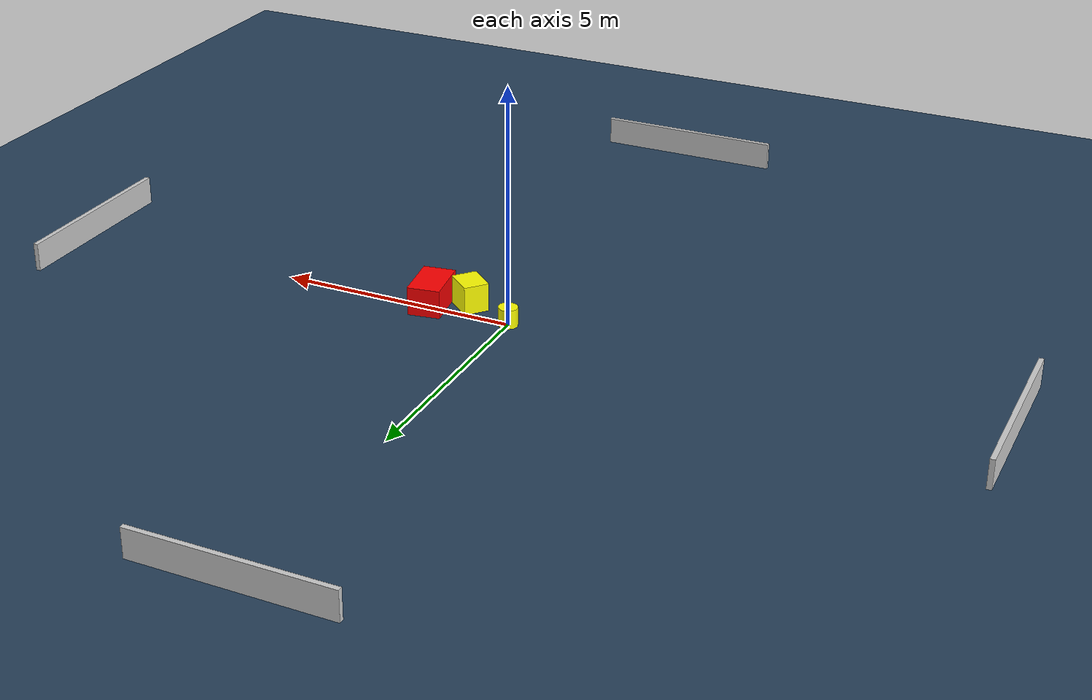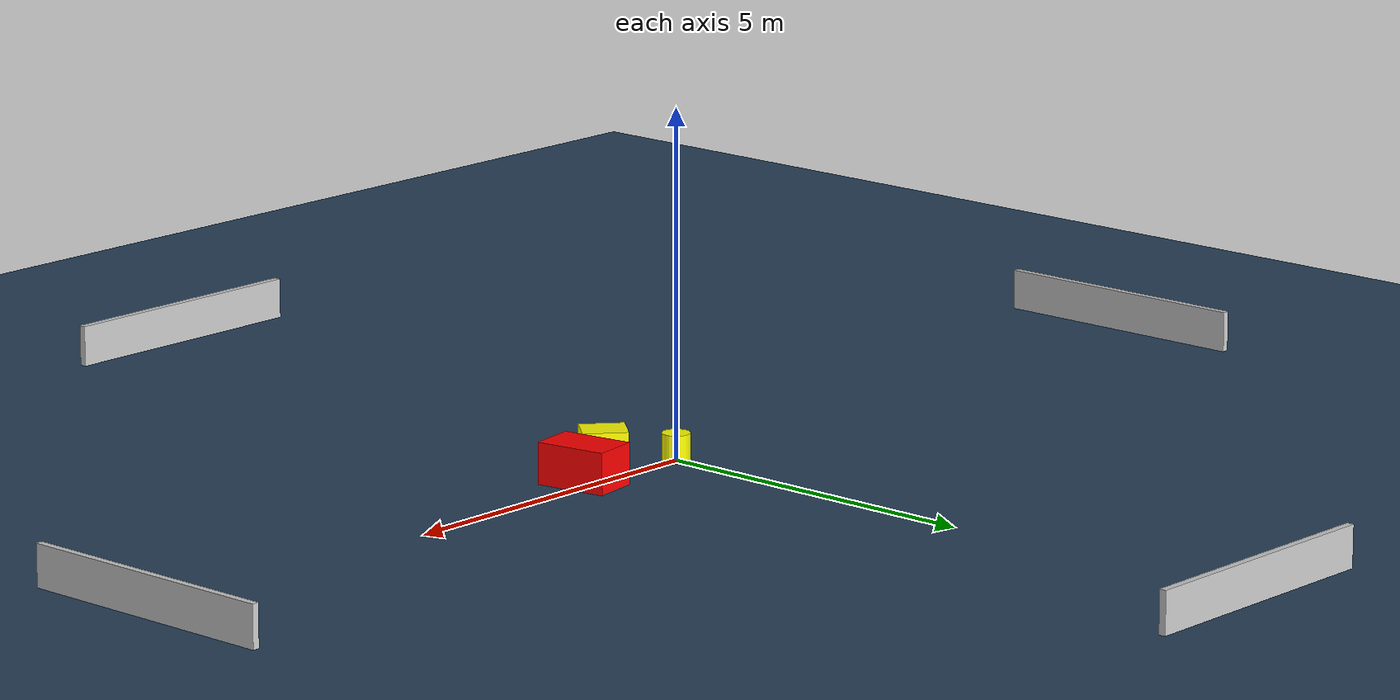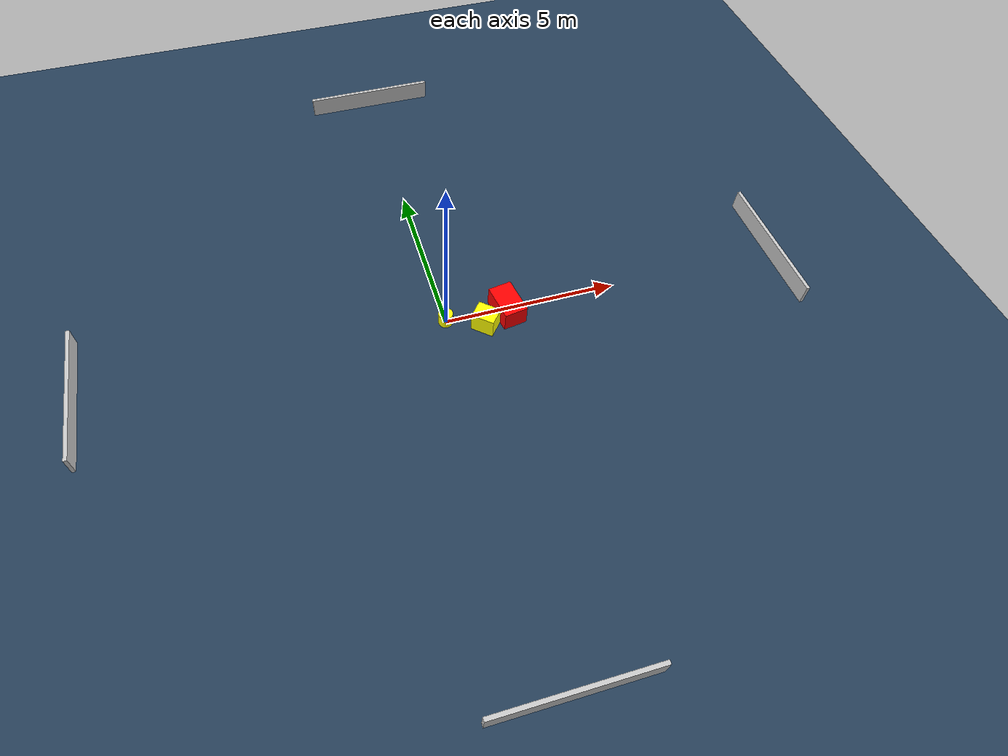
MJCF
<?xml version="1.0" ?>
<mujoco model="generated_environment">
  <option timestep="0.01" integrator="RK4" cone="elliptic"/>
  <default>
    <geom density="1"/>
  </default>
  <asset>
    <texture builtin="gradient" height="3072" name="skybox" rgb1="0.3 0.5 0.7" rgb2="0 0 0" type="skybox" width="512"/>
    <texture builtin="checker" height="300" name="groundplane" rgb1="0.2 0.3 0.4" rgb2="0.1 0.2 0.3" type="2d" width="300"/>
    <material name="groundplane" reflectance="0.2" texrepeat="5 5" texture="groundplane"/>
  </asset>
  <worldbody>
    <light dir="0 0 -1" directional="true" pos="0 0 1.5"/>
    <geom condim="3" friction="0.5 0.005 0.001" material="groundplane" name="floor" pos="0 0 0" size="0 0 0.05" type="plane"/>
    <body name="walls">
      <geom name="wall_1" condim="4" pos="-10.0 0.0 0.3" rgba="0.800000011920929 0.800000011920929 0.800000011920929 1.0" size="0.05 2.0 0.3" type="box"/>
      <geom name="wall_2" condim="4" pos="10.0 0.0 0.3" rgba="0.800000011920929 0.800000011920929 0.800000011920929 1.0" size="0.05 2.0 0.3" type="box"/>
      <geom name="wall_3" condim="4" pos="0.0 -10.0 0.3" rgba="0.800000011920929 0.800000011920929 0.800000011920929 1.0" size="2.0 0.05 0.3" type="box"/>
      <geom name="wall_4" condim="4" pos="0.0 10.0 0.3" rgba="0.800000011920929 0.800000011920929 0.800000011920929 1.0" size="2.0 0.05 0.3" type="box"/>
    </body>
    <body name="robot">
      <joint name="joint_x" type="slide" pos="0 0 0" axis="1 0 0"/>
      <joint name="joint_y" type="slide" pos="0 0 0" axis="0 1 0"/>
      <geom name="robot" type="cylinder" pos="0.0 0.0 0.2" size="0.2 0.2 0.0" mass="5.0" friction="1.0 0.005 0.0001" condim="4" rgba="1.0 1.0 0.0 1.0"/>
    </body>
    <body name="obstacle_1_movable">
      <geom name="obstacle_1_movable" condim="4" pos="1.0430913708856444 -0.40871992355128106 0.3" euler="0 0 229.42330142218097" friction="0.0 0.005 0.001" rgba="1.0 1.0 0.0 1.0" size="0.2645875950503692 0.32377528073345624 0.3" type="box" mass="0.1"/>
      <joint type="free"/>
    </body>
    <body name="obstacle_2_static">
      <geom name="obstacle_2_static" condim="4" pos="1.763649935821653 -0.11051545998963068 0.3" euler="0 0 98.96583161719913" friction="0.0 0.005 0.001" rgba="1.0 0.0 0.0 1.0" size="0.5266627943543162 0.3383849791286465 0.3" type="box"/>
    </body>
  </worldbody>
  <actuator>
    <motor name="actuator_x" joint="joint_x" gear="1" ctrlrange="-1 1"/>
    <motor name="actuator_y" joint="joint_y" gear="1" ctrlrange="-1 1"/>
  </actuator>
</mujoco>
